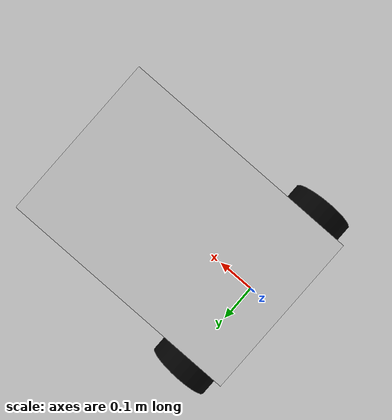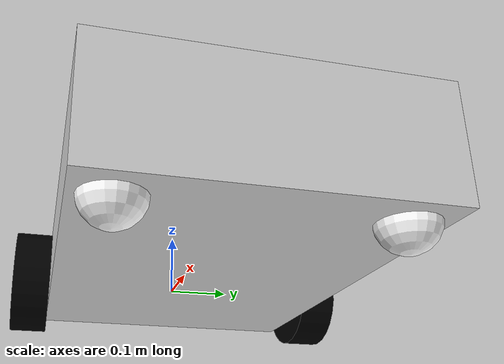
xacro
<?xml version="1.0"?>
<robot xmlns:xacro="http://www.ros.org/wiki/xacro" >

    <xacro:include filename="inertial_macros.xacro"/>

    <material name="white">
        <color rgba="1 1 1 1" />
    </material>

    <material name="silver">
        <color rgba="0.8 0.8 0.8 1.0"/>
    </material>

    <material name="orange">
        <color rgba="1 0.3 0.1 1"/>
    </material>

    <material name="blue">
        <color rgba="0.2 0.2 1 1"/>
    </material>

    <material name="black">
        <color rgba="0 0 0 1"/>
    </material>

    <material name="red">
        <color rgba="1 0 0 1"/>
    </material>

    <material name="green">
        <color rgba="0 1 0 1"/>
    </material>

    <material name="purple">
        <color rgba="1 0 1 1"/>
    </material>

    <material name="gray">
        <color rgba="0.2 0.2 0.2 1"/>
    </material>

    <xacro:property name="chassis_length" value="0.64"/>
    <xacro:property name="chassis_width" value="0.44"/>
    <xacro:property name="chassis_height" value="0.16078"/>
    <xacro:property name="chassis_mass" value="4.22"/> <!--0.5kg/m ; 2.3 without luggage base-->

    <xacro:property name="wheel_radius" value="0.084"/>
    <xacro:property name="wheel_thickness" value="0.058"/>
    <xacro:property name="wheel_mass" value="3.1"/>

    <xacro:property name="wheel_offset_x" value="0.08122"/>
    <xacro:property name="wheel_offset_y" value="0.250"/>
    <xacro:property name="wheel_offset_z" value="0.04692"/>

    <xacro:property name="caster_wheel_radius" value="0.04"/>
    <xacro:property name="caster_wheel_mass" value="0.3628739"/>
    <xacro:property name="caster_wheel_offset_x" value="0.58"/>
    <xacro:property name="caster_wheel_offset_y" value="0.17"/>
    <xacro:property name="caster_wheel_offset_z" value="${wheel_offset_z - wheel_radius + caster_wheel_radius}"/>

    <link name="base_link">

    </link>

    <!-- BASE_FOOTPRINT LINK -->

    <joint name="base_footprint_joint" type="fixed">
        <parent link="base_link"/>
        <child link="base_footprint"/>
        <origin xyz="0 0 0" rpy="0 0 0"/>
    </joint>

    <link name="base_footprint">
    </link>

    <!-- CHASSIS LINK -->

    <joint name="chassis_joint" type="fixed">
        <parent link="base_link"/>
        <child link="chassis"/>
        <origin xyz="${-wheel_offset_x} 0 ${-wheel_offset_z}"/>
    </joint>

    <link name="chassis">
        <visual>
            <origin xyz="${chassis_length/2} 0 ${chassis_height/2}"/>
            <geometry>
                <box size="${chassis_length} ${chassis_width} ${chassis_height}"/>
            </geometry>
            <material name="silver"/>
        </visual>
        <collision>
            <origin xyz="${chassis_length/2} 0 ${chassis_height/2}"/>
            <geometry>
                <box size="${chassis_length} ${chassis_width} ${chassis_height}"/>
            </geometry>
        </collision>
        <xacro:inertial_box mass="${chassis_mass}" x="${chassis_length}" y="${chassis_width}" z="${chassis_height}">
            <origin xyz="${chassis_length/2} 0 ${chassis_height/2}" rpy="0 0 0"/>
        </xacro:inertial_box>
    </link>

    <gazebo reference="chassis">
        <material>Gazebo/Silver</material>
    </gazebo>

    <!-- LEFT WHEEL LINK -->

    <joint name="left_wheel_joint" type="continuous">
        <parent link="base_link"/>
        <child link="left_wheel"/>
        <origin xyz="0 ${wheel_offset_y} 0" rpy="-${pi/2} 0 0" />
        <axis xyz="0 0 1"/>
    </joint>

    <link name="left_wheel">
        <visual>
            <geometry>
                <cylinder radius="${wheel_radius}" length="${wheel_thickness}"/>
            </geometry>
            <material name="black"/>
        </visual>
        <collision>
            <geometry>
                <sphere radius="${wheel_radius}"/>
            </geometry>
        </collision>
        <xacro:inertial_cylinder mass="${wheel_mass}" length="${wheel_thickness}" radius="${wheel_radius}">
            <origin xyz="0 0 0" rpy="0 0 0"/>
        </xacro:inertial_cylinder>
    </link>

    <gazebo reference="left_wheel">
        <material>Gazebo/Black</material>
    </gazebo>

    <!-- RIGHT WHEEL LINK -->

    <joint name="right_wheel_joint" type="continuous">
        <parent link="base_link"/>
        <child link="right_wheel"/>
        <origin xyz="0 ${-wheel_offset_y} 0" rpy="${pi/2} 0 0" />
        <axis xyz="0 0 -1"/>
    </joint>

    <link name="right_wheel">
        <visual>
            <geometry>
                <cylinder radius="${wheel_radius}" length="${wheel_thickness}"/>
            </geometry>
            <material name="black"/>
        </visual>
        <collision>
            <geometry>
                <sphere radius="${wheel_radius}"/>
            </geometry>
        </collision>
        <xacro:inertial_cylinder mass="${wheel_mass}" length="${wheel_thickness}" radius="${wheel_radius}">
            <origin xyz="0 0 0" rpy="0 0 0"/>
        </xacro:inertial_cylinder>
    </link>

    <gazebo reference="right_wheel">
        <material>Gazebo/Black</material>
    </gazebo>

    <!-- LEFT CASTER WHEEL LINK -->

    <joint name="left_caster_wheel_joint" type="fixed">
        <parent link="chassis"/>
        <child link="left_caster_wheel"/>
        <origin xyz="${caster_wheel_offset_x} ${caster_wheel_offset_y} ${caster_wheel_offset_z}"/>
    </joint>

    <link name="left_caster_wheel">
        <visual>
            <geometry>
                <sphere radius="${caster_wheel_radius}"/>
            </geometry>
            <material name="white"/>
        </visual>
        <collision>
            <geometry>
                <sphere radius="${caster_wheel_radius}"/>
            </geometry>
        </collision>
        <xacro:inertial_sphere mass="${caster_wheel_mass}" radius="${caster_wheel_radius}">
            <origin xyz="0 0 0" rpy="0 0 0"/>
        </xacro:inertial_sphere>
    </link>

    <gazebo reference="left_caster_wheel">
        <material>Gazebo/White</material>
        <mu1 value="0.001"/>
        <mu2 value="0.001"/>
    </gazebo>

    <!-- RIGHT CASTER WHEEL LINK -->

    <joint name="right_caster_wheel_joint" type="fixed">
        <parent link="chassis"/>
        <child link="right_caster_wheel"/>
        <origin xyz="${caster_wheel_offset_x} ${-caster_wheel_offset_y} ${caster_wheel_offset_z}"/>
    </joint>

    <link name="right_caster_wheel">
        <visual>
            <geometry>
                <sphere radius="${caster_wheel_radius}"/>
            </geometry>
            <material name="white"/>
        </visual>
        <collision>
            <geometry>
                <sphere radius="${caster_wheel_radius}"/>
            </geometry>
        </collision>
        <xacro:inertial_sphere mass="${caster_wheel_mass}" radius="${caster_wheel_radius}">
            <origin xyz="0 0 0" rpy="0 0 0"/>
        </xacro:inertial_sphere>
    </link>

    <gazebo reference="right_caster_wheel">
        <material>Gazebo/White</material>
        <mu1 value="0.001"/>
        <mu2 value="0.001"/>
    </gazebo>

</robot>
